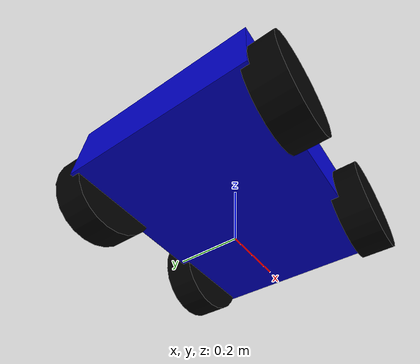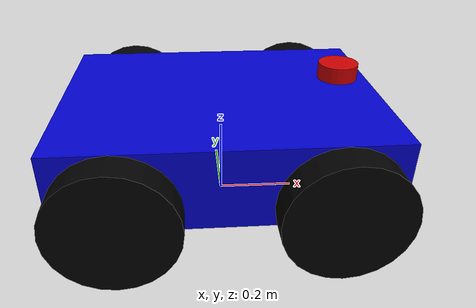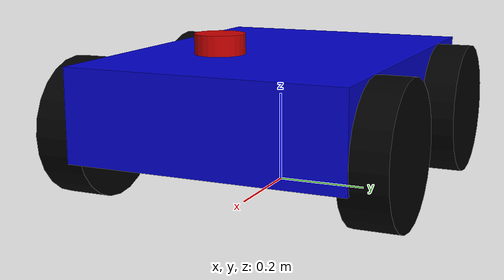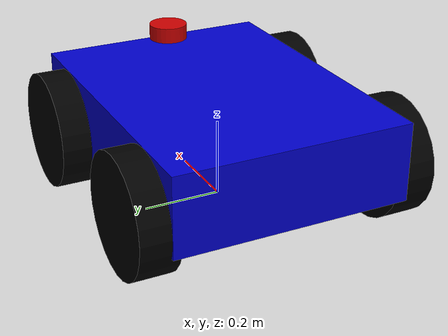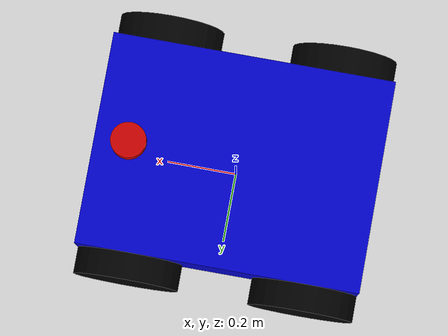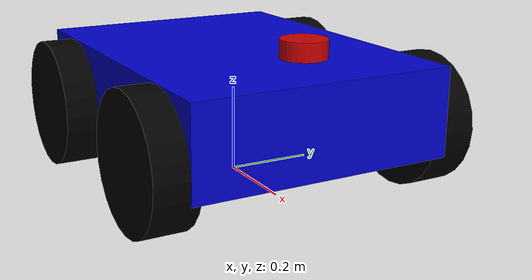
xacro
<?xml version="1.0"?>
<robot xmlns:xacro="http://www.ros.org/wiki/xacro" name="skid_steer_robot">

  <!-- Properties -->
  <xacro:property name="base_width" value="0.6"/>
  <xacro:property name="base_length" value="0.8"/>
  <xacro:property name="base_height" value="0.2"/>
  <xacro:property name="wheel_radius" value="0.15"/>
  <xacro:property name="wheel_width" value="0.1"/>
  <xacro:property name="wheel_ygap" value="0.025"/>
  <xacro:property name="wheel_zoff" value="0.05"/>
  <xacro:property name="wheel_xoff" value="0.25"/>

  <!-- Colors -->
  <material name="blue">
    <color rgba="0 0 0.8 1"/>
  </material>
  <material name="black">
    <color rgba="0 0 0 1"/>
  </material>
  <material name="red">
    <color rgba="0.8 0 0 1"/>
  </material>

  <!-- Base Link -->
  <link name="base_link">
    <visual>
      <geometry>
        <box size="${base_length} ${base_width} ${base_height}"/>
      </geometry>
      <material name="blue"/>
    </visual>
    <collision>
      <geometry>
        <box size="${base_length} ${base_width} ${base_height}"/>
      </geometry>
    </collision>
    <inertial>
      <mass value="10"/>
      <inertia ixx="1.0" ixy="0.0" ixz="0.0" iyy="1.0" iyz="0.0" izz="1.0"/>
    </inertial>
  </link>

  <!-- Footprint -->
  <link name="base_footprint"/>
  <joint name="base_joint" type="fixed">
    <parent link="base_footprint"/>
    <child link="base_link"/>
    <origin xyz="0.0 0.0 ${wheel_radius + wheel_zoff}" rpy="0 0 0"/>
  </joint>

  <!-- Wheel Macro -->
  <xacro:macro name="wheel" params="prefix x_reflect y_reflect">
    <link name="${prefix}_link">
      <visual>
        <origin xyz="0 0 0" rpy="0 1.5708 1.5708"/>
        <geometry>
          <cylinder radius="${wheel_radius}" length="${wheel_width}"/>
        </geometry>
        <material name="black"/>
      </visual>
      <collision>
        <origin xyz="0 0 0" rpy="0 1.5708 1.5708"/>
        <geometry>
          <cylinder radius="${wheel_radius}" length="${wheel_width}"/>
        </geometry>
      </collision>
      <inertial>
        <mass value="2"/>
        <inertia ixx="0.1" ixy="0.0" ixz="0.0" iyy="0.1" iyz="0.0" izz="0.1"/>
      </inertial>
    </link>

    <joint name="${prefix}_joint" type="continuous">
      <parent link="base_link"/>
      <child link="${prefix}_link"/>
      <origin xyz="${x_reflect*wheel_xoff} ${y_reflect*(base_width/2+wheel_ygap)} ${-wheel_zoff}" rpy="0 0 0"/>
      <axis xyz="0 1 0"/>
    </joint>
  </xacro:macro>

  <!-- Wheels -->
  <xacro:wheel prefix="left_front" x_reflect="1" y_reflect="1"/>
  <xacro:wheel prefix="right_front" x_reflect="1" y_reflect="-1"/>
  <xacro:wheel prefix="left_rear" x_reflect="-1" y_reflect="1"/>
  <xacro:wheel prefix="right_rear" x_reflect="-1" y_reflect="-1"/>

  <!-- Lidar -->
  <link name="lidar_link">
    <visual>
      <geometry>
        <cylinder radius="0.05" length="0.04"/>
      </geometry>
      <material name="red"/>
    </visual>
    <collision>
      <geometry>
        <cylinder radius="0.05" length="0.04"/>
      </geometry>
    </collision>
    <inertial>
      <mass value="0.1"/>
      <inertia ixx="0.001" ixy="0.0" ixz="0.0" iyy="0.001" iyz="0.0" izz="0.001"/>
    </inertial>
  </link>

  <joint name="lidar_joint" type="fixed">
    <parent link="base_link"/>
    <child link="lidar_link"/>
    <origin xyz="0.3 0 0.15" rpy="0 0 0"/>
  </joint>

  <!-- IMU -->
  <link name="imu_link">
    <visual>
      <geometry>
        <box size="0.02 0.02 0.01"/>
      </geometry>
      <material name="red"/>
    </visual>
    <collision>
      <geometry>
        <box size="0.02 0.02 0.01"/>
      </geometry>
    </collision>
    <inertial>
      <mass value="0.01"/>
      <inertia ixx="0.0001" ixy="0.0" ixz="0.0" iyy="0.0001" iyz="0.0" izz="0.0001"/>
    </inertial>
  </link>

  <joint name="imu_joint" type="fixed">
    <parent link="base_link"/>
    <child link="imu_link"/>
    <origin xyz="0 0 0.05" rpy="0 0 0"/>
  </joint>

  <!-- Gazebo Plugins -->

  <!-- Skid Steer Drive Plugin with Odometry -->
  <gazebo>
    <plugin name="skid_steer_drive_controller" filename="libgazebo_ros_diff_drive.so">

      <!-- Plugin Parameters -->
      <update_rate>50.0</update_rate>

      <!-- Number of wheel pairs -->
      <num_wheel_pairs>2</num_wheel_pairs>

      <!-- Wheels -->
      <left_joint>left_front_joint</left_joint>
      <left_joint>left_rear_joint</left_joint>
      <right_joint>right_front_joint</right_joint>
      <right_joint>right_rear_joint</right_joint>

      <!-- Kinematics -->
      <wheel_separation>0.65</wheel_separation>
      <wheel_diameter>0.3</wheel_diameter>

      <!-- Limits -->
      <max_wheel_torque>100</max_wheel_torque>
      <max_wheel_acceleration>2.0</max_wheel_acceleration>

      <!-- Output -->
      <publish_odom>true</publish_odom>
      <publish_odom_tf>true</publish_odom_tf>
      <publish_wheel_tf>true</publish_wheel_tf>

      <odometry_frame>odom</odometry_frame>
      <robot_base_frame>base_footprint</robot_base_frame>

      <!-- Remapping -->
      <ros>
        <namespace>/</namespace>
        <remapping>cmd_vel:=cmd_vel</remapping>
        <remapping>odom:=odom</remapping>
      </ros>

    </plugin>
  </gazebo>

  <!-- Lidar Plugin -->buat agar gerakan robot lebih halus
  <gazebo reference="lidar_link">
    <sensor name="lidar" type="ray">
      <pose>0 0 0 0 0 0</pose>
      <visualize>true</visualize>
      <update_rate>10</update_rate>
      <ray>
        <scan>
          <horizontal>
            <samples>360</samples>
            <resolution>1</resolution>
            <min_angle>-3.14159</min_angle>
            <max_angle>3.14159</max_angle>
          </horizontal>
        </scan>
        <range>
          <min>0.3</min>
          <max>15</max>
          <resolution>0.1</resolution>
        </range>
      </ray>
      <plugin name="lidar_controller" filename="libgazebo_ros_ray_sensor.so">
        <ros>
          <remapping>~/out:=scan</remapping>
        </ros>
        <output_type>sensor_msgs/LaserScan</output_type>
        <frame_name>lidar_link</frame_name>
      </plugin>
    </sensor>
  </gazebo>

  <!-- IMU Plugin -->
  <gazebo reference="imu_link">
    <sensor name="imu_sensor" type="imu">
      <plugin filename="libgazebo_ros_imu_sensor.so" name="imu_plugin">
        <ros>
          <namespace>/</namespace>
          <remapping>~/out:=imu</remapping>
        </ros>
        <initial_orientation_as_reference>false</initial_orientation_as_reference>
      </plugin>
      <always_on>true</always_on>
      <update_rate>100</update_rate>
      <visualize>true</visualize>
      <imu>
        <angular_velocity>
          <x>
            <noise type="gaussian">
              <mean>0.0</mean>
              <stddev>2e-4</stddev>
            </noise>
          </x>
          <y>
            <noise type="gaussian">
              <mean>0.0</mean>
              <stddev>2e-4</stddev>
            </noise>
          </y>
          <z>
            <noise type="gaussian">
              <mean>0.0</mean>
              <stddev>2e-4</stddev>
            </noise>
          </z>
        </angular_velocity>
        <linear_acceleration>
          <x>
            <noise type="gaussian">
              <mean>0.0</mean>
              <stddev>1.7e-2</stddev>
            </noise>
          </x>
          <y>
            <noise type="gaussian">
              <mean>0.0</mean>
              <stddev>1.7e-2</stddev>
            </noise>
          </y>
          <z>
            <noise type="gaussian">
              <mean>0.0</mean>
              <stddev>1.7e-2</stddev>
            </noise>
          </z>
        </linear_acceleration>
      </imu>
    </sensor>
  </gazebo>

  <!-- Gazebo Colors -->
  <gazebo reference="base_link">
    <material>Gazebo/Blue</material>
  </gazebo>

  <gazebo reference="left_front_link">
    <material>Gazebo/Black</material>
  </gazebo>

  <gazebo reference="right_front_link">
    <material>Gazebo/Black</material>
  </gazebo>

  <gazebo reference="left_rear_link">
    <material>Gazebo/Black</material>
  </gazebo>

  <gazebo reference="right_rear_link">
    <material>Gazebo/Black</material>
  </gazebo>

  <gazebo reference="lidar_link">
    <material>Gazebo/Red</material>
  </gazebo>

</robot>
